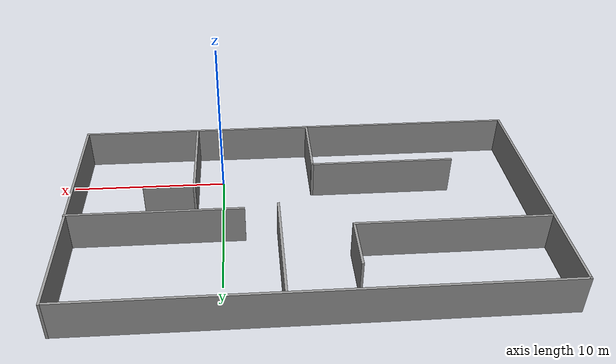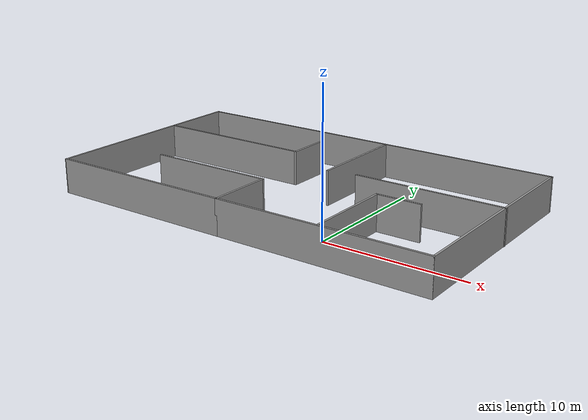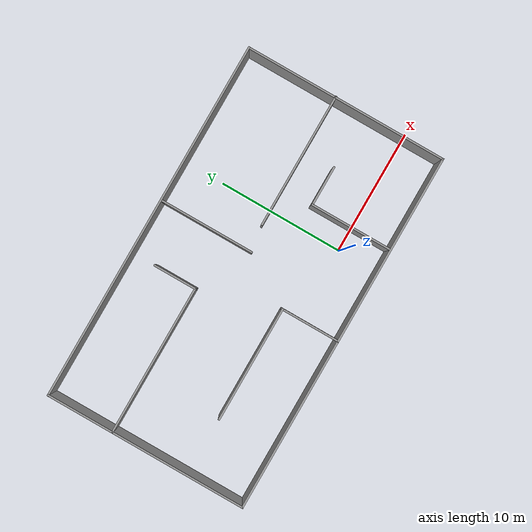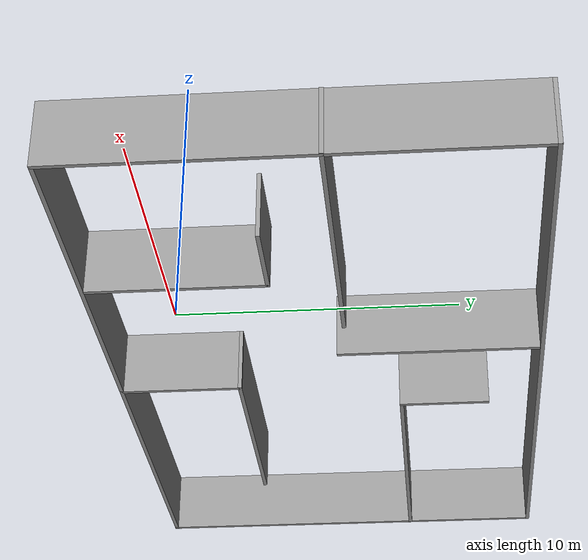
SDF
<?xml version='1.0'?>
<sdf version='1.7'>
  <model name='world'>
    <pose>-5.16529 5.02 0 0 -0 0</pose>
    <link name='Wall_0'>
      <collision name='Wall_0_Collision'>
        <geometry>
          <box>
            <size>15.25 0.15 2.5</size>
          </box>
        </geometry>
        <pose>0 0 1.25 0 -0 0</pose>
      </collision>
      <visual name='Wall_0_Visual'>
        <pose>0 0 1.25 0 -0 0</pose>
        <geometry>
          <box>
            <size>15.25 0.15 2.5</size>
          </box>
        </geometry>
        <material>
          <script>
            <uri>file://media/materials/scripts/gazebo.material</uri>
            <name>Gazebo/Grey</name>
          </script>
          <ambient>1 1 1 1</ambient>
        </material>
        <meta>
          <layer>0</layer>
        </meta>
      </visual>
      <pose>6.85529 -8.05 0 0 -0 0</pose>
    </link>
    <link name='Wall_1'>
      <collision name='Wall_1_Collision'>
        <geometry>
          <box>
            <size>16.25 0.15 2.5</size>
          </box>
        </geometry>
        <pose>0 0 1.25 0 -0 0</pose>
      </collision>
      <visual name='Wall_1_Visual'>
        <pose>0 0 1.25 0 -0 0</pose>
        <geometry>
          <box>
            <size>16.25 0.15 2.5</size>
          </box>
        </geometry>
        <material>
          <script>
            <uri>file://media/materials/scripts/gazebo.material</uri>
            <name>Gazebo/Grey</name>
          </script>
          <ambient>1 1 1 1</ambient>
        </material>
        <meta>
          <layer>0</layer>
        </meta>
      </visual>
      <pose>14.4053 0 0 0 -0 1.5708</pose>
    </link>
    <link name='Wall_11'>
      <collision name='Wall_11_Collision'>
        <geometry>
          <box>
            <size>10.75 0.15 2.5</size>
          </box>
        </geometry>
        <pose>0 0 1.25 0 -0 0</pose>
      </collision>
      <visual name='Wall_11_Visual'>
        <pose>0 0 1.25 0 -0 0</pose>
        <geometry>
          <box>
            <size>10.75 0.15 2.5</size>
          </box>
        </geometry>
        <material>
          <script>
            <uri>file://media/materials/scripts/gazebo.material</uri>
            <name>Gazebo/Grey</name>
          </script>
          <ambient>1 1 1 1</ambient>
        </material>
        <meta>
          <layer>0</layer>
        </meta>
      </visual>
      <pose>9.14471 0.867304 0 0 -0 3.14159</pose>
    </link>
    <link name='Wall_13'>
      <collision name='Wall_13_Collision'>
        <geometry>
          <box>
            <size>7.5 0.15 2.5</size>
          </box>
        </geometry>
        <pose>0 0 1.25 0 -0 0</pose>
      </collision>
      <visual name='Wall_13_Visual'>
        <pose>0 0 1.25 0 -0 0</pose>
        <geometry>
          <box>
            <size>7.5 0.15 2.5</size>
          </box>
        </geometry>
        <material>
          <script>
            <uri>file://media/materials/scripts/gazebo.material</uri>
            <name>Gazebo/Grey</name>
          </script>
          <ambient>1 1 1 1</ambient>
        </material>
        <meta>
          <layer>0</layer>
        </meta>
      </visual>
      <pose>1.74166 4.21866 0 0 -0 1.5708</pose>
    </link>
    <link name='Wall_15'>
      <collision name='Wall_15_Collision'>
        <geometry>
          <box>
            <size>12 0.15 2.5</size>
          </box>
        </geometry>
        <pose>0 0 1.25 0 -0 0</pose>
      </collision>
      <visual name='Wall_15_Visual'>
        <pose>0 0 1.25 0 -0 0</pose>
        <geometry>
          <box>
            <size>12 0.15 2.5</size>
          </box>
        </geometry>
        <material>
          <script>
            <uri>file://media/materials/scripts/gazebo.material</uri>
            <name>Gazebo/Grey</name>
          </script>
          <ambient>1 1 1 1</ambient>
        </material>
        <meta>
          <layer>0</layer>
        </meta>
      </visual>
      <pose>-8.47511 2.72826 0 0 -0 0</pose>
    </link>
    <link name='Wall_16'>
      <collision name='Wall_16_Collision'>
        <geometry>
          <box>
            <size>3.5 0.15 2.5</size>
          </box>
        </geometry>
        <pose>0 0 1.25 0 -0 0</pose>
      </collision>
      <visual name='Wall_16_Visual'>
        <pose>0 0 1.25 0 -0 0</pose>
        <geometry>
          <box>
            <size>3.5 0.15 2.5</size>
          </box>
        </geometry>
        <material>
          <script>
            <uri>file://media/materials/scripts/gazebo.material</uri>
            <name>Gazebo/Grey</name>
          </script>
          <ambient>1 1 1 1</ambient>
        </material>
        <meta>
          <layer>0</layer>
        </meta>
      </visual>
      <pose>-2.55011 4.40326 0 0 -0 1.5708</pose>
    </link>
    <link name='Wall_2'>
      <collision name='Wall_2_Collision'>
        <geometry>
          <box>
            <size>29 0.15 2.5</size>
          </box>
        </geometry>
        <pose>0 0 1.25 0 -0 0</pose>
      </collision>
      <visual name='Wall_2_Visual'>
        <pose>0 0 1.25 0 -0 0</pose>
        <geometry>
          <box>
            <size>29 0.15 2.5</size>
          </box>
        </geometry>
        <material>
          <script>
            <uri>file://media/materials/scripts/gazebo.material</uri>
            <name>Gazebo/Grey</name>
          </script>
          <ambient>1 1 1 1</ambient>
        </material>
        <meta>
          <layer>0</layer>
        </meta>
      </visual>
      <pose>-0.019713 8.05 0 0 -0 3.14159</pose>
    </link>
    <link name='Wall_3'>
      <collision name='Wall_3_Collision'>
        <geometry>
          <box>
            <size>16.25 0.15 2.5</size>
          </box>
        </geometry>
        <pose>0 0 1.25 0 -0 0</pose>
      </collision>
      <visual name='Wall_3_Visual'>
        <pose>0 0 1.25 0 -0 0</pose>
        <geometry>
          <box>
            <size>16.25 0.15 2.5</size>
          </box>
        </geometry>
        <material>
          <script>
            <uri>file://media/materials/scripts/gazebo.material</uri>
            <name>Gazebo/Grey</name>
          </script>
          <ambient>1 1 1 1</ambient>
        </material>
        <meta>
          <layer>0</layer>
        </meta>
      </visual>
      <pose>-14.4447 0 0 0 -0 -1.5708</pose>
    </link>
    <link name='Wall_4'>
      <collision name='Wall_4_Collision'>
        <geometry>
          <box>
            <size>13.9 0.15 2.5</size>
          </box>
        </geometry>
        <pose>0 0 1.25 0 -0 0</pose>
      </collision>
      <visual name='Wall_4_Visual'>
        <pose>0 0 1.25 0 -0 0</pose>
        <geometry>
          <box>
            <size>13.9 0.15 2.5</size>
          </box>
        </geometry>
        <material>
          <script>
            <uri>file://media/materials/scripts/gazebo.material</uri>
            <name>Gazebo/Grey</name>
          </script>
          <ambient>1 1 1 1</ambient>
        </material>
        <meta>
          <layer>0</layer>
        </meta>
      </visual>
      <pose>-7.56971 -8.05 0 0 -0 0</pose>
    </link>
    <link name='Wall_5'>
      <collision name='Wall_5_Collision'>
        <geometry>
          <box>
            <size>4.75 0.15 2.5</size>
          </box>
        </geometry>
        <pose>0 0 1.25 0 -0 0</pose>
      </collision>
      <visual name='Wall_5_Visual'>
        <pose>0 0 1.25 0 -0 0</pose>
        <geometry>
          <box>
            <size>4.75 0.15 2.5</size>
          </box>
        </geometry>
        <material>
          <script>
            <uri>file://media/materials/scripts/gazebo.material</uri>
            <name>Gazebo/Grey</name>
          </script>
          <ambient>1 1 1 1</ambient>
        </material>
        <meta>
          <layer>0</layer>
        </meta>
      </visual>
      <pose>-0.694713 -5.75 0 0 -0 1.5708</pose>
    </link>
    <link name='Wall_6'>
      <collision name='Wall_6_Collision'>
        <geometry>
          <box>
            <size>9.25 0.15 2.5</size>
          </box>
        </geometry>
        <pose>0 0 1.25 0 -0 0</pose>
      </collision>
      <visual name='Wall_6_Visual'>
        <pose>0 0 1.25 0 -0 0</pose>
        <geometry>
          <box>
            <size>9.25 0.15 2.5</size>
          </box>
        </geometry>
        <material>
          <script>
            <uri>file://media/materials/scripts/gazebo.material</uri>
            <name>Gazebo/Grey</name>
          </script>
          <ambient>1 1 1 1</ambient>
        </material>
        <meta>
          <layer>0</layer>
        </meta>
      </visual>
      <pose>-5.24471 -3.45 0 0 -0 3.14159</pose>
    </link>
    <link name='Wall_8'>
      <collision name='Wall_8_Collision'>
        <geometry>
          <box>
            <size>6.5 0.15 2.5</size>
          </box>
        </geometry>
        <pose>0 0 1.25 0 -0 0</pose>
      </collision>
      <visual name='Wall_8_Visual'>
        <pose>0 0 1.25 0 -0 0</pose>
        <geometry>
          <box>
            <size>6.5 0.15 2.5</size>
          </box>
        </geometry>
        <material>
          <script>
            <uri>file://media/materials/scripts/gazebo.material</uri>
            <name>Gazebo/Grey</name>
          </script>
          <ambient>1 1 1 1</ambient>
        </material>
        <meta>
          <layer>0</layer>
        </meta>
      </visual>
      <pose>6.87952 -4.73656 0 0 -0 1.5708</pose>
    </link>
    <link name='Wall_9'>
      <collision name='Wall_9_Collision'>
        <geometry>
          <box>
            <size>3.25 0.15 2.5</size>
          </box>
        </geometry>
        <pose>0 0 1.25 0 -0 0</pose>
      </collision>
      <visual name='Wall_9_Visual'>
        <pose>0 0 1.25 0 -0 0</pose>
        <geometry>
          <box>
            <size>3.25 0.15 2.5</size>
          </box>
        </geometry>
        <material>
          <script>
            <uri>file://media/materials/scripts/gazebo.material</uri>
            <name>Gazebo/Grey</name>
          </script>
          <ambient>1 1 1 1</ambient>
        </material>
        <meta>
          <layer>0</layer>
        </meta>
      </visual>
      <pose>8.42952 -1.56156 0 0 -0 0</pose>
    </link>
    <static>1</static>
  </model>
</sdf>
